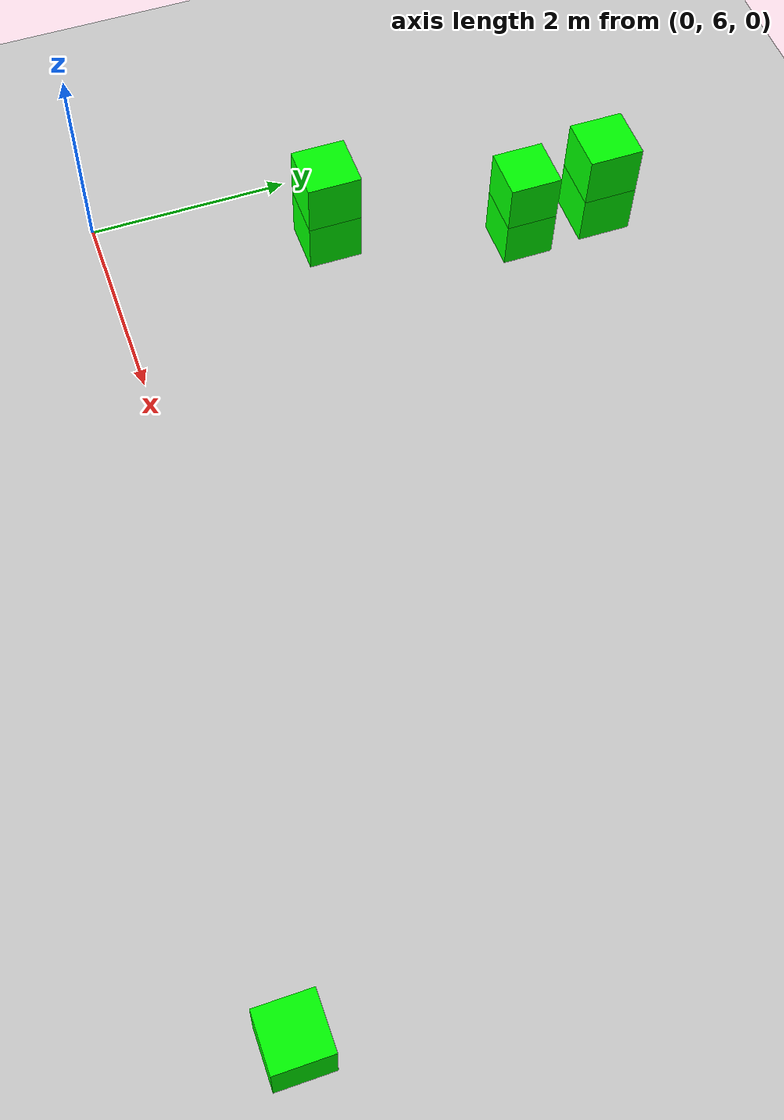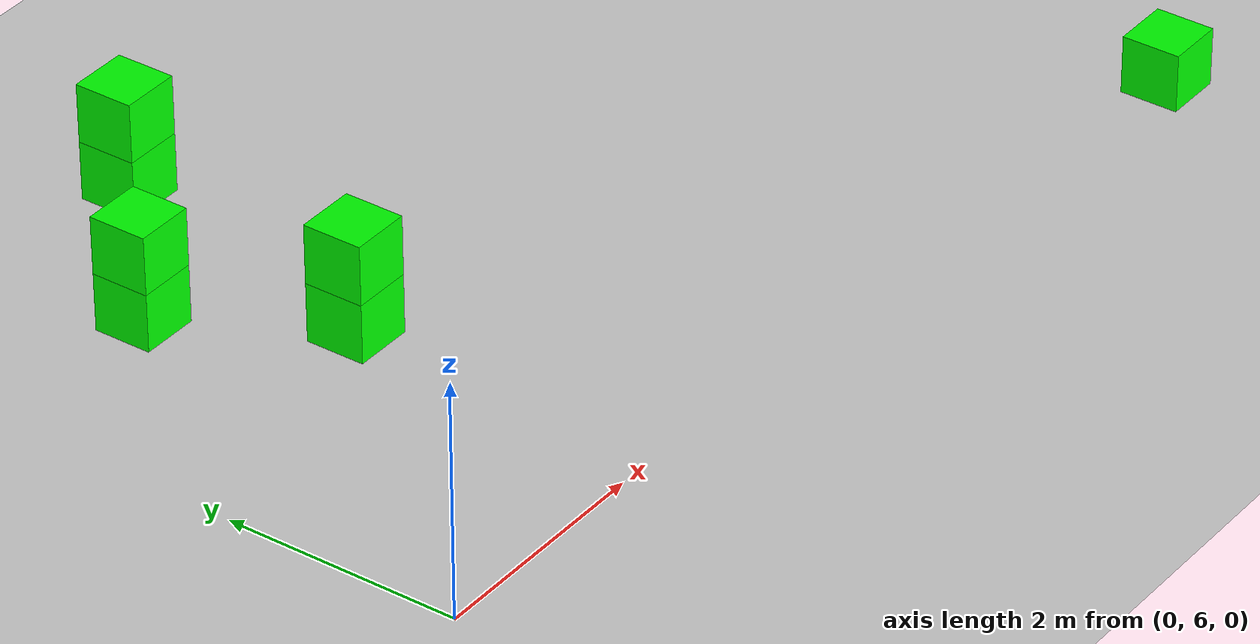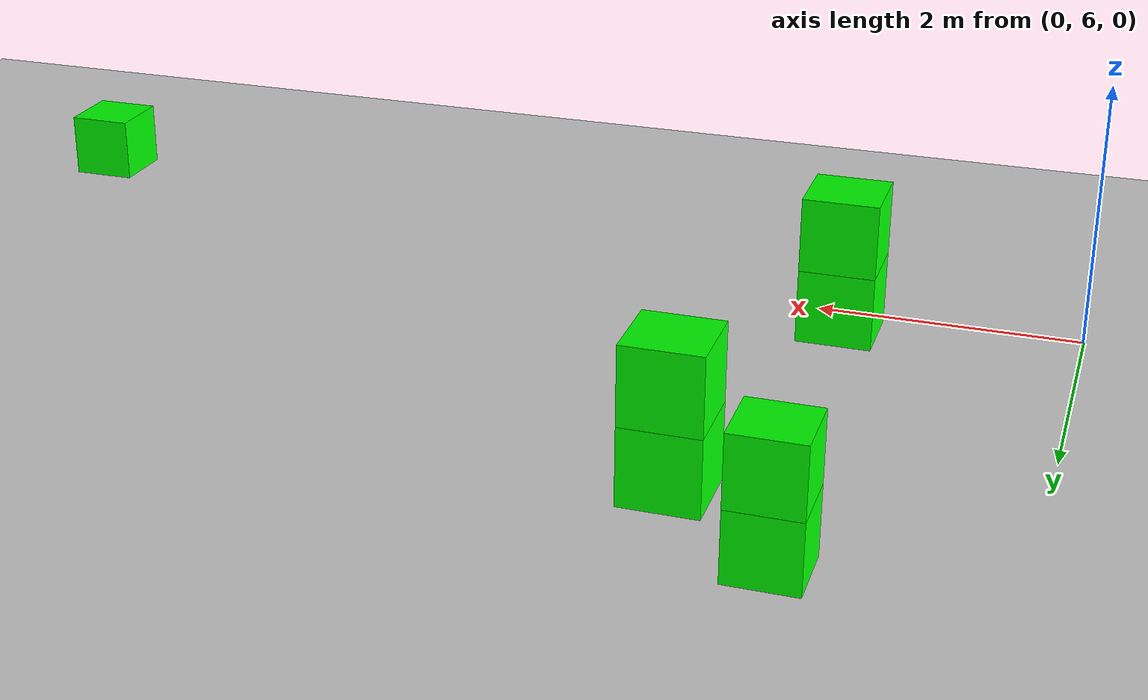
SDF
<?xml version="1.0" ?>
<sdf version="1.9">
  <world name="crazysim_default">

   <model name="my_cube0">
      <static>true</static>
      <pose>8.39 5.44 0.5 0 0 0</pose> <!-- posizione x=1m, y=1m, z=0.5m -->
      <link name="link">
        <visual name="visual">
          <geometry>
            <box>
              <size>0.5 0.5 0.5</size> <!-- cubo 50cm per lato -->
            </box>
          </geometry>
          <material>
            <ambient>0 1 0 1</ambient> <!-- colore verde -->
            <diffuse>0 1 0 1</diffuse>
          </material>
        </visual>
        <collision name="collision">
          <geometry>
            <box>
              <size>0.5 0.5 0.5</size>
            </box>
          </geometry>
        </collision>
        <inertial>
          <mass>1.0</mass>
          <inertia>
            <ixx>0.083</ixx>
            <iyy>0.083</iyy>
            <izz>0.083</izz>
          </inertia>
        </inertial>
      </link>
    </model>

   <model name="my_cube1">
   <static>true</static>
      <pose>1.5 10 0.3 0 0 0</pose> <!-- posizione x=1m, y=1m, z=0.5m -->
      <link name="link">
        <visual name="visual">
          <geometry>
            <box>
              <size>0.5 0.5 0.5</size> <!-- cubo 50cm per lato -->
            </box>
          </geometry>
          <material>
            <ambient>0 1 0 1</ambient> <!-- colore verde -->
            <diffuse>0 1 0 1</diffuse>
          </material>
        </visual>
        <collision name="collision">
          <geometry>
            <box>
              <size>0.5 0.5 0.5</size>
            </box>
          </geometry>
        </collision>
        <inertial>
          <mass>1.0</mass>
          <inertia>
            <ixx>0.083</ixx>
            <iyy>0.083</iyy>
            <izz>0.083</izz>
          </inertia>
        </inertial>
      </link>
    </model>

   <model name="my_cube2">
   <static>true</static>
      <pose>1.5 10 0.8 0 0 0</pose> <!-- posizione x=1m, y=1m, z=0.5m -->
      <link name="link">
        <visual name="visual">
          <geometry>
            <box>
              <size>0.5 0.5 0.5</size> <!-- cubo 50cm per lato -->
            </box>
          </geometry>
          <material>
            <ambient>0 1 0 1</ambient> <!-- colore verde -->
            <diffuse>0 1 0 1</diffuse>
          </material>
        </visual>
        <collision name="collision">
          <geometry>
            <box>
              <size>0.5 0.5 0.5</size>
            </box>
          </geometry>
        </collision>
        <inertial>
          <mass>1.0</mass>
          <inertia>
            <ixx>0.083</ixx>
            <iyy>0.083</iyy>
            <izz>0.083</izz>
          </inertia>
        </inertial>
      </link>
    </model>

    <model name="my_cube3">
    <static>true</static>
      <pose>1.5 8 1 0 0 0</pose> <!-- posizione x=1m, y=1m, z=0.5m -->
      <link name="link">
        <visual name="visual">
          <geometry>
            <box>
              <size>0.5 0.5 0.5</size> <!-- cubo 50cm per lato -->
            </box>
          </geometry>
          <material>
            <ambient>0 1 0 1</ambient> <!-- colore verde -->
            <diffuse>0 1 0 1</diffuse>
          </material>
        </visual>
        <collision name="collision">
          <geometry>
            <box>
              <size>0.5 0.5 0.5</size>
            </box>
          </geometry>
        </collision>
        <inertial>
          <mass>1.0</mass>
          <inertia>
            <ixx>0.083</ixx>
            <iyy>0.083</iyy>
            <izz>0.083</izz>
          </inertia>
        </inertial>
      </link>
    </model>

    <model name="my_cube4">
    <static>true</static>
      <pose>1.5 8 1.5 0 0 0</pose> <!-- posizione x=1m, y=1m, z=0.5m -->
      <link name="link">
        <visual name="visual">
          <geometry>
            <box>
              <size>0.5 0.5 0.5</size> <!-- cubo 50cm per lato -->
            </box>
          </geometry>
          <material>
            <ambient>0 1 0 1</ambient> <!-- colore verde -->
            <diffuse>0 1 0 1</diffuse>
          </material>
        </visual>
        <collision name="collision">
          <geometry>
            <box>
              <size>0.5 0.5 0.5</size>
            </box>
          </geometry>
        </collision>
        <inertial>
          <mass>1.0</mass>
          <inertia>
            <ixx>0.083</ixx>
            <iyy>0.083</iyy>
            <izz>0.083</izz>
          </inertia>
        </inertial>
      </link>
    </model>

     <model name="my_cube5">
     <static>true</static>
      <pose>2 10.5 1 0 0 0</pose> <!-- posizione x=1m, y=1m, z=0.5m -->
      <link name="link">
        <visual name="visual">
          <geometry>
            <box>
              <size>0.5 0.5 0.5</size> <!-- cubo 50cm per lato -->
            </box>
          </geometry>
          <material>
            <ambient>0 1 0 1</ambient> <!-- colore verde -->
            <diffuse>0 1 0 1</diffuse>
          </material>
        </visual>
        <collision name="collision">
          <geometry>
            <box>
              <size>0.5 0.5 0.5</size>
            </box>
          </geometry>
        </collision>
        <inertial>
          <mass>1.0</mass>
          <inertia>
            <ixx>0.083</ixx>
            <iyy>0.083</iyy>
            <izz>0.083</izz>
          </inertia>
        </inertial>
      </link>
    </model>

     <model name="my_cube6">
     <static>true</static>
      <pose>2 10.5 1.5 0 0 0</pose> <!-- posizione x=1m, y=1m, z=0.5m -->
      <link name="link">
        <visual name="visual">
          <geometry>
            <box>
              <size>0.5 0.5 0.5</size> <!-- cubo 50cm per lato -->
            </box>
          </geometry>
          <material>
            <ambient>0 1 0 1</ambient> <!-- colore verde -->
            <diffuse>0 1 0 1</diffuse>
          </material>
        </visual>
        <collision name="collision">
          <geometry>
            <box>
              <size>0.5 0.5 0.5</size>
            </box>
          </geometry>
        </collision>
        <inertial>
          <mass>1.0</mass>
          <inertia>
            <ixx>0.083</ixx>
            <iyy>0.083</iyy>
            <izz>0.083</izz>
          </inertia>
        </inertial>
      </link>
    </model>

    <physics type="ode">
      <max_step_size>0.001</max_step_size>
      <real_time_factor>1.0</real_time_factor>
      <real_time_update_rate>1000</real_time_update_rate>
    </physics>
    <plugin name='gz::sim::systems::Physics' filename='libgz-sim-physics-system.so'/>
    <plugin name='gz::sim::systems::UserCommands' filename='libgz-sim-user-commands-system.so'/>
    <plugin name='gz::sim::systems::SceneBroadcaster' filename='libgz-sim-scene-broadcaster-system.so'/>
    <plugin name='gz::sim::systems::Contact' filename='libgz-sim-contact-system.so'/>
    <plugin name='gz::sim::systems::Imu' filename='libgz-sim-imu-system.so'/>
    <plugin name='gz::sim::systems::AirPressure' filename='libgz-sim-air-pressure-system.so'/>
    <plugin name='gz::sim::systems::Sensors' filename='libgz-sim-sensors-system.so'>
      <render_engine>ogre2</render_engine>
    </plugin>
    <gravity>0 0 -9.80665</gravity>
    <magnetic_field>6e-06 2.3e-05 -4.2e-05</magnetic_field>
    <atmosphere type='adiabatic'/>
    <scene>
      <grid>false</grid>
      <ambient>0.4 0.4 0.4 1</ambient>
      <background>0.7 0.7 0.7 1</background>
      <shadows>true</shadows>
    </scene>
    <model name="ground_plane">
      <static>true</static>
      <link name="link">
        <collision name="collision">
          <geometry>
            <plane>
              <normal>0 0 1</normal>
              <size>100 100</size>
            </plane>
          </geometry>
        </collision>
        <visual name="visual">
          <geometry>
            <plane>
              <normal>0 0 1</normal>
              <size>100 100</size>
            </plane>
          </geometry>
          <material>
            <ambient>0.8 0.8 0.8 1</ambient>
            <diffuse>0.8 0.8 0.8 1</diffuse>
            <specular>0.8 0.8 0.8 1</specular>
          </material>
        </visual>
      </link>
    </model>
    <light type="directional" name="sun">
      <cast_shadows>true</cast_shadows>
      <pose>0 0 10 0 0 0</pose>
      <diffuse>0.8 0.8 0.8 1</diffuse>
      <specular>0.2 0.2 0.2 1</specular>
      <attenuation>
        <range>1000</range>
        <constant>0.9</constant>
        <linear>0.01</linear>
        <quadratic>0.001</quadratic>
      </attenuation>
      <direction>-0.5 0.1 -0.9</direction>
    </light>
  </world>
</sdf>
